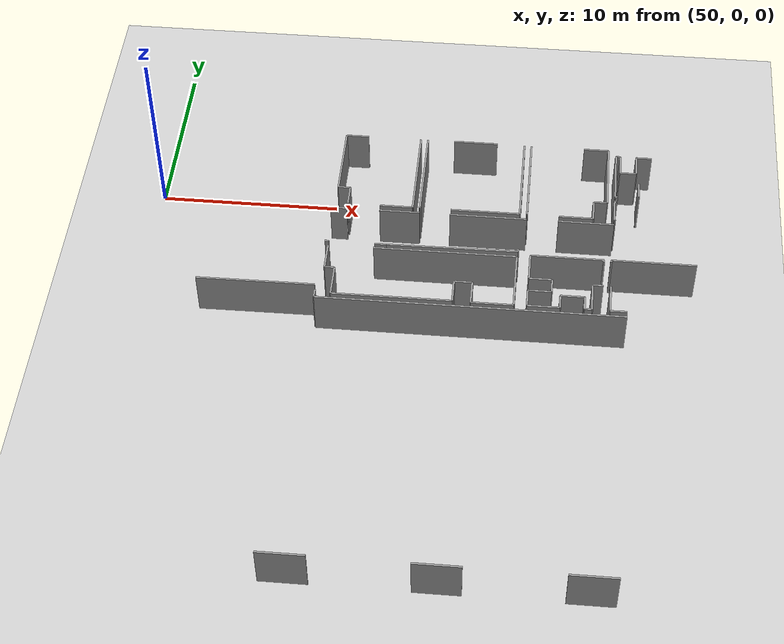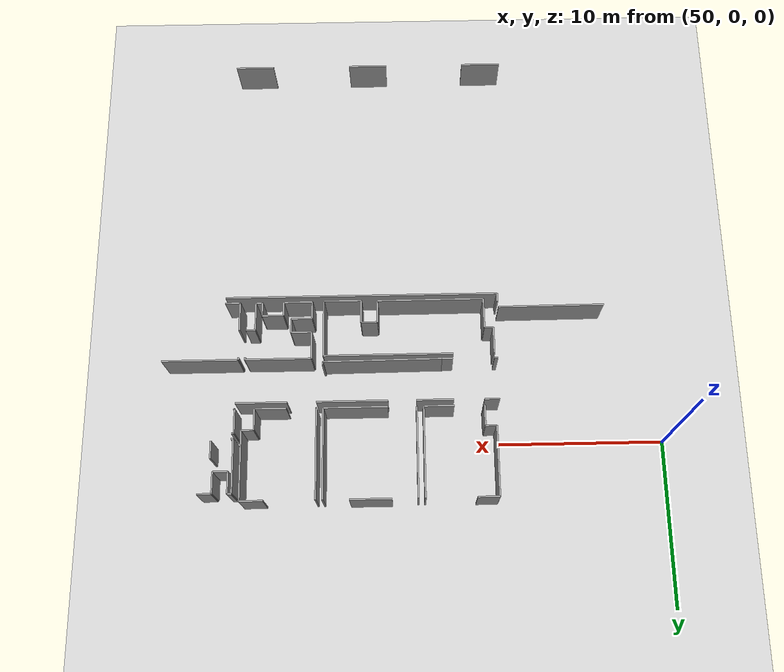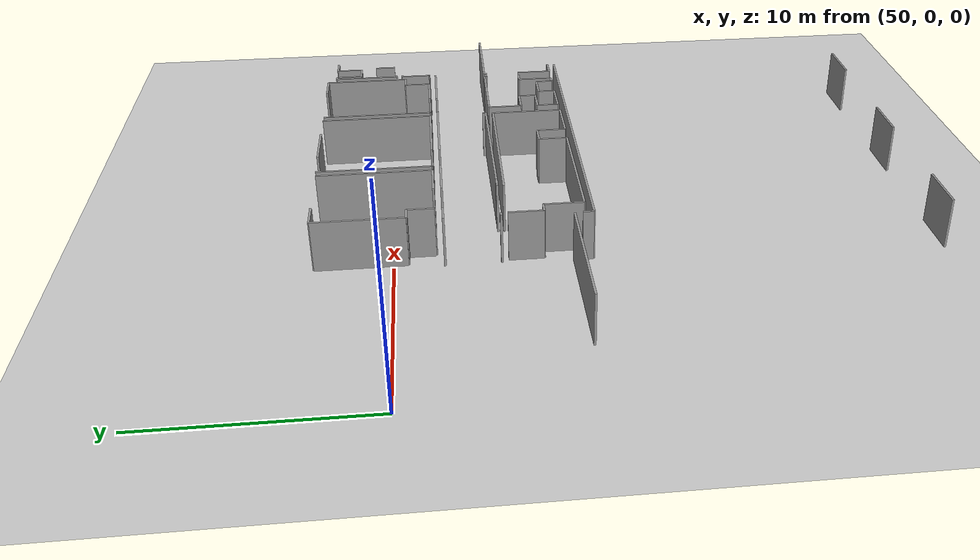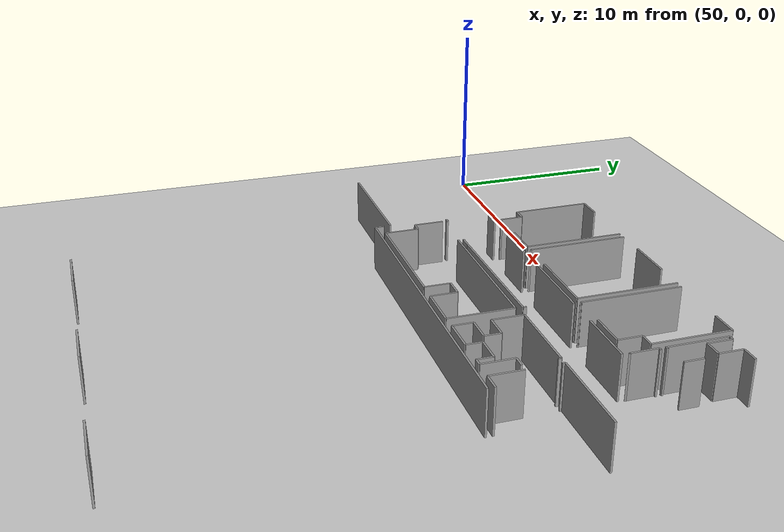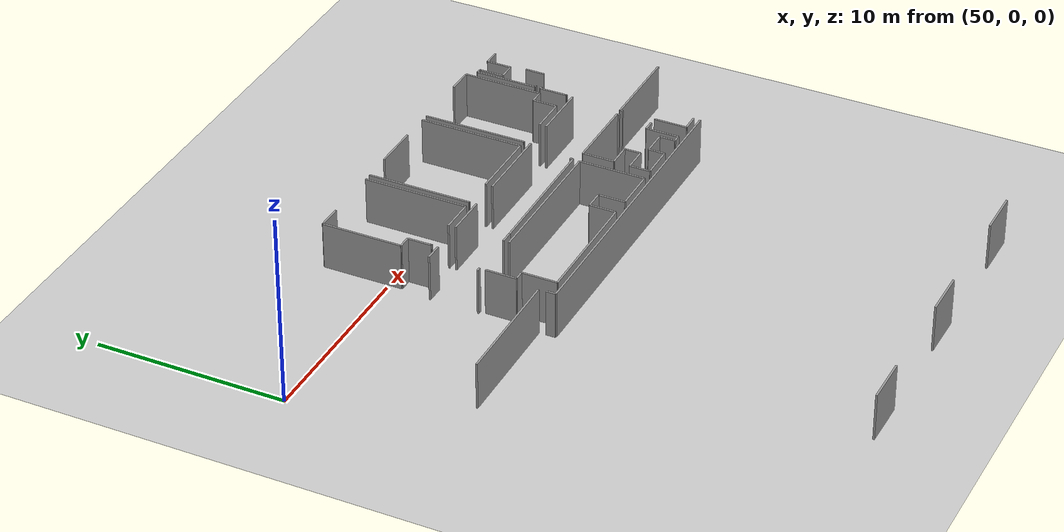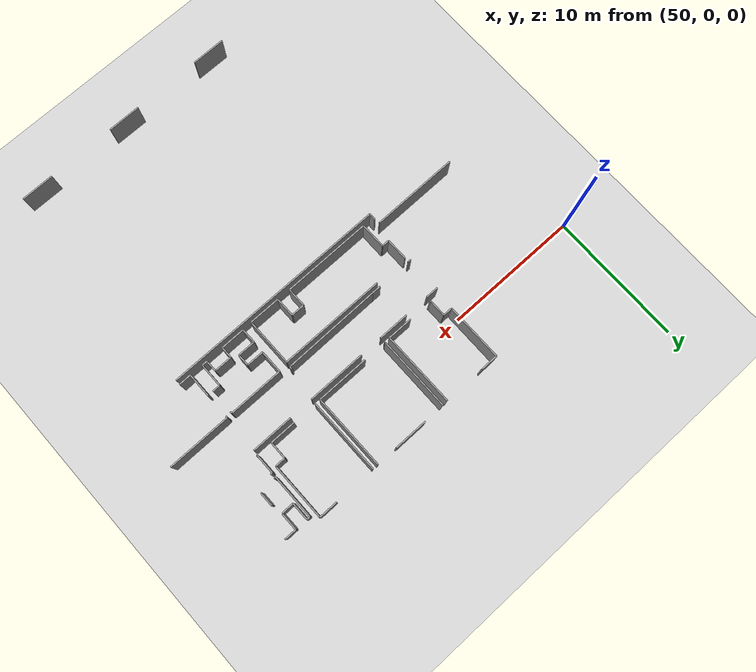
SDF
<sdf version="1.6">
 <world name="default">
  <model name="ground_plane">
   <static>1</static>
   <link name="link">
    <collision name="collision">
     <geometry><plane><normal>0 0 1</normal><size>100 100</size></plane></geometry>
     <surface><friction><ode><mu>100</mu><mu2>50</mu2></ode></friction></surface>
    </collision>
    <visual name="visual">
     <cast_shadows>0</cast_shadows>
     <geometry><plane><normal>0 0 1</normal><size>100 100</size></plane></geometry>
     <material>
      <script><uri>file://media/materials/scripts/gazebo.material</uri><name>Gazebo/Grey</name></script>
     </material>
    </visual>
   </link>
  </model>
  <model name="0510035342_A_40_1_101">
   <static>1</static>
   <link name="Wall_492">
    <collision name="Wall_492_Collision">
     <geometry><box><size>0.50518134715 0.1 2.5</size></box></geometry>
     <pose>0.252590673575 0 1.25 0 0 0</pose>
    </collision>
    <visual name="Wall_492_Visual">
     <pose>0.252590673575 0 1.25 0 0 0</pose>
     <geometry><box><size>0.50518134715 0.1 2.5</size></box></geometry>
     <material>
      <script><uri>file://media/materials/scripts/gazebo.material</uri><name>Gazebo/Grey</name></script>
      <ambient>1 1 1 1</ambient>
     </material>
    </visual>
    <pose>175.610586203 -33.7844153205 0 0 0 -1.57079632679</pose>
   </link>
   <link name="Wall_493">
    <collision name="Wall_493_Collision">
     <geometry><box><size>16.7380371838 0.1 2.5</size></box></geometry>
     <pose>8.36901859189 0 1.25 0 0 0</pose>
    </collision>
    <visual name="Wall_493_Visual">
     <pose>8.36901859189 0 1.25 0 0 0</pose>
     <geometry><box><size>16.7380371838 0.1 2.5</size></box></geometry>
     <material>
      <script><uri>file://media/materials/scripts/gazebo.material</uri><name>Gazebo/Grey</name></script>
      <ambient>1 1 1 1</ambient>
     </material>
    </visual>
    <pose>175.610586203 -34.2895966677 0 0 0 0.0</pose>
   </link>
   <link name="Wall_517">
    <collision name="Wall_517_Collision">
     <geometry><box><size>2.4484405161 0.1 2.5</size></box></geometry>
     <pose>1.22422025805 0 1.25 0 0 0</pose>
    </collision>
    <visual name="Wall_517_Visual">
     <pose>1.22422025805 0 1.25 0 0 0</pose>
     <geometry><box><size>2.4484405161 0.1 2.5</size></box></geometry>
     <material>
      <script><uri>file://media/materials/scripts/gazebo.material</uri><name>Gazebo/Grey</name></script>
      <ambient>1 1 1 1</ambient>
     </material>
    </visual>
    <pose>192.212994006 -50.5813776288 0 0 0 3.14159265359</pose>
   </link>
   <link name="Wall_518">
    <collision name="Wall_518_Collision">
     <geometry><box><size>2.4484405161 0.1 2.5</size></box></geometry>
     <pose>1.22422025805 0 1.25 0 0 0</pose>
    </collision>
    <visual name="Wall_518_Visual">
     <pose>1.22422025805 0 1.25 0 0 0</pose>
     <geometry><box><size>2.4484405161 0.1 2.5</size></box></geometry>
     <material>
      <script><uri>file://media/materials/scripts/gazebo.material</uri><name>Gazebo/Grey</name></script>
      <ambient>1 1 1 1</ambient>
     </material>
    </visual>
    <pose>184.757187849 -50.5813776288 0 0 0 3.14159265359</pose>
   </link>
   <link name="Wall_519">
    <collision name="Wall_519_Collision">
     <geometry><box><size>2.49263435944 0.1 2.5</size></box></geometry>
     <pose>1.24631717972 0 1.25 0 0 0</pose>
    </collision>
    <visual name="Wall_519_Visual">
     <pose>1.24631717972 0 1.25 0 0 0</pose>
     <geometry><box><size>2.49263435944 0.1 2.5</size></box></geometry>
     <material>
      <script><uri>file://media/materials/scripts/gazebo.material</uri><name>Gazebo/Grey</name></script>
      <ambient>1 1 1 1</ambient>
     </material>
    </visual>
    <pose>177.290460226 -50.5813776288 0 0 0 3.14159265359</pose>
   </link>
   <link name="Wall_528">
    <collision name="Wall_528_Collision">
     <geometry><box><size>6.47983789515 0.1 2.5</size></box></geometry>
     <pose>3.23991894757 0 1.25 0 0 0</pose>
    </collision>
    <visual name="Wall_528_Visual">
     <pose>3.23991894757 0 1.25 0 0 0</pose>
     <geometry><box><size>6.47983789515 0.1 2.5</size></box></geometry>
     <material>
      <script><uri>file://media/materials/scripts/gazebo.material</uri><name>Gazebo/Grey</name></script>
      <ambient>1 1 1 1</ambient>
     </material>
    </visual>
    <pose>175.556740831 -33.4069897389 0 0 0 -3.13586991895</pose>
   </link>
   <link name="Wall_529">
    <collision name="Wall_529_Collision">
     <geometry><box><size>0.667987402215 0.1 2.5</size></box></geometry>
     <pose>0.333993701107 0 1.25 0 0 0</pose>
    </collision>
    <visual name="Wall_529_Visual">
     <pose>0.333993701107 0 1.25 0 0 0</pose>
     <geometry><box><size>0.667987402215 0.1 2.5</size></box></geometry>
     <material>
      <script><uri>file://media/materials/scripts/gazebo.material</uri><name>Gazebo/Grey</name></script>
      <ambient>1 1 1 1</ambient>
     </material>
    </visual>
    <pose>179.120186935 -30.1490907244 0 0 0 3.14159265359</pose>
   </link>
   <link name="Wall_530">
    <collision name="Wall_530_Collision">
     <geometry><box><size>0.227318906837 0.1 2.5</size></box></geometry>
     <pose>0.113659453419 0 1.25 0 0 0</pose>
    </collision>
    <visual name="Wall_530_Visual">
     <pose>0.113659453419 0 1.25 0 0 0</pose>
     <geometry><box><size>0.227318906837 0.1 2.5</size></box></geometry>
     <material>
      <script><uri>file://media/materials/scripts/gazebo.material</uri><name>Gazebo/Grey</name></script>
      <ambient>1 1 1 1</ambient>
     </material>
    </visual>
    <pose>175.935436351 -30.1490907244 0 0 0 3.14159265359</pose>
   </link>
   <link name="Wall_531">
    <collision name="Wall_531_Collision">
     <geometry><box><size>0.92197500762 0.1 2.5</size></box></geometry>
     <pose>0.46098750381 0 1.25 0 0 0</pose>
    </collision>
    <visual name="Wall_531_Visual">
     <pose>0.46098750381 0 1.25 0 0 0</pose>
     <geometry><box><size>0.92197500762 0.1 2.5</size></box></geometry>
     <material>
      <script><uri>file://media/materials/scripts/gazebo.material</uri><name>Gazebo/Grey</name></script>
      <ambient>1 1 1 1</ambient>
     </material>
    </visual>
    <pose>175.708117444 -27.5787361577 0 0 0 0.0</pose>
   </link>
   <link name="Wall_532">
    <collision name="Wall_532_Collision">
     <geometry><box><size>2.2508381591 0.1 2.5</size></box></geometry>
     <pose>1.12541907955 0 1.25 0 0 0</pose>
    </collision>
    <visual name="Wall_532_Visual">
     <pose>1.12541907955 0 1.25 0 0 0</pose>
     <geometry><box><size>2.2508381591 0.1 2.5</size></box></geometry>
     <material>
      <script><uri>file://media/materials/scripts/gazebo.material</uri><name>Gazebo/Grey</name></script>
      <ambient>1 1 1 1</ambient>
     </material>
    </visual>
    <pose>178.466676826 -27.5787361577 0 0 0 0.0</pose>
   </link>
   <link name="Wall_533">
    <collision name="Wall_533_Collision">
     <geometry><box><size>4.29340648176 0.1 2.5</size></box></geometry>
     <pose>2.14670324088 0 1.25 0 0 0</pose>
    </collision>
    <visual name="Wall_533_Visual">
     <pose>2.14670324088 0 1.25 0 0 0</pose>
     <geometry><box><size>4.29340648176 0.1 2.5</size></box></geometry>
     <material>
      <script><uri>file://media/materials/scripts/gazebo.material</uri><name>Gazebo/Grey</name></script>
      <ambient>1 1 1 1</ambient>
     </material>
    </visual>
    <pose>182.400944834 -27.5787361577 0 0 0 0.0</pose>
   </link>
   <link name="Wall_534">
    <collision name="Wall_534_Collision">
     <geometry><box><size>3.09382302144 0.1 2.5</size></box></geometry>
     <pose>1.54691151072 0 1.25 0 0 0</pose>
    </collision>
    <visual name="Wall_534_Visual">
     <pose>1.54691151072 0 1.25 0 0 0</pose>
     <geometry><box><size>3.09382302144 0.1 2.5</size></box></geometry>
     <material>
      <script><uri>file://media/materials/scripts/gazebo.material</uri><name>Gazebo/Grey</name></script>
      <ambient>1 1 1 1</ambient>
     </material>
    </visual>
    <pose>188.443309966 -27.5787361577 0 0 0 0.0</pose>
   </link>
   <link name="Wall_553">
    <collision name="Wall_553_Collision">
     <geometry><box><size>0.17906126181 0.1 2.5</size></box></geometry>
     <pose>0.0895306309052 0 1.25 0 0 0</pose>
    </collision>
    <visual name="Wall_553_Visual">
     <pose>0.0895306309052 0 1.25 0 0 0</pose>
     <geometry><box><size>0.17906126181 0.1 2.5</size></box></geometry>
     <material>
      <script><uri>file://media/materials/scripts/gazebo.material</uri><name>Gazebo/Grey</name></script>
      <ambient>1 1 1 1</ambient>
     </material>
    </visual>
    <pose>186.33749873 -29.8973890074 0 0 0 -1.57079632679</pose>
   </link>
   <link name="Wall_554">
    <collision name="Wall_554_Collision">
     <geometry><box><size>7.21767734002 0.1 2.5</size></box></geometry>
     <pose>3.60883867001 0 1.25 0 0 0</pose>
    </collision>
    <visual name="Wall_554_Visual">
     <pose>3.60883867001 0 1.25 0 0 0</pose>
     <geometry><box><size>7.21767734002 0.1 2.5</size></box></geometry>
     <material>
      <script><uri>file://media/materials/scripts/gazebo.material</uri><name>Gazebo/Grey</name></script>
      <ambient>1 1 1 1</ambient>
     </material>
    </visual>
    <pose>186.33749873 -30.0764502692 0 0 0 -3.13152824117</pose>
   </link>
   <link name="Wall_555">
    <collision name="Wall_555_Collision">
     <geometry><box><size>1.26257238647 0.1 2.5</size></box></geometry>
     <pose>0.631286193234 0 1.25 0 0 0</pose>
    </collision>
    <visual name="Wall_555_Visual">
     <pose>0.631286193234 0 1.25 0 0 0</pose>
     <geometry><box><size>1.26257238647 0.1 2.5</size></box></geometry>
     <material>
      <script><uri>file://media/materials/scripts/gazebo.material</uri><name>Gazebo/Grey</name></script>
      <ambient>1 1 1 1</ambient>
     </material>
    </visual>
    <pose>176.642537844 -27.2124860307 0 0 0 1.57079632679</pose>
   </link>
   <link name="Wall_556">
    <collision name="Wall_556_Collision">
     <geometry><box><size>0.681702732907 0.1 2.5</size></box></geometry>
     <pose>0.340851366453 0 1.25 0 0 0</pose>
    </collision>
    <visual name="Wall_556_Visual">
     <pose>0.340851366453 0 1.25 0 0 0</pose>
     <geometry><box><size>0.681702732907 0.1 2.5</size></box></geometry>
     <material>
      <script><uri>file://media/materials/scripts/gazebo.material</uri><name>Gazebo/Grey</name></script>
      <ambient>1 1 1 1</ambient>
     </material>
    </visual>
    <pose>176.642537844 -25.9499136442 0 0 0 3.14159265359</pose>
   </link>
   <link name="Wall_557">
    <collision name="Wall_557_Collision">
     <geometry><box><size>4.23321141928 0.1 2.5</size></box></geometry>
     <pose>2.11660570964 0 1.25 0 0 0</pose>
    </collision>
    <visual name="Wall_557_Visual">
     <pose>2.11660570964 0 1.25 0 0 0</pose>
     <geometry><box><size>4.23321141928 0.1 2.5</size></box></geometry>
     <material>
      <script><uri>file://media/materials/scripts/gazebo.material</uri><name>Gazebo/Grey</name></script>
      <ambient>1 1 1 1</ambient>
     </material>
    </visual>
    <pose>175.960835111 -25.9499136442 0 0 0 1.57079632679</pose>
   </link>
   <link name="Wall_558">
    <collision name="Wall_558_Collision">
     <geometry><box><size>1.29203494869 0.1 2.5</size></box></geometry>
     <pose>0.646017474347 0 1.25 0 0 0</pose>
    </collision>
    <visual name="Wall_558_Visual">
     <pose>0.646017474347 0 1.25 0 0 0</pose>
     <geometry><box><size>1.29203494869 0.1 2.5</size></box></geometry>
     <material>
      <script><uri>file://media/materials/scripts/gazebo.material</uri><name>Gazebo/Grey</name></script>
      <ambient>1 1 1 1</ambient>
     </material>
    </visual>
    <pose>175.960835111 -21.7167022249 0 0 0 0.0</pose>
   </link>
   <link name="Wall_559">
    <collision name="Wall_559_Collision">
     <geometry><box><size>5.48359240069 0.1 2.5</size></box></geometry>
     <pose>2.74179620035 0 1.25 0 0 0</pose>
    </collision>
    <visual name="Wall_559_Visual">
     <pose>2.74179620035 0 1.25 0 0 0</pose>
     <geometry><box><size>5.48359240069 0.1 2.5</size></box></geometry>
     <material>
      <script><uri>file://media/materials/scripts/gazebo.material</uri><name>Gazebo/Grey</name></script>
      <ambient>1 1 1 1</ambient>
     </material>
    </visual>
    <pose>180.289037895 -21.7167022249 0 0 0 -1.57079632679</pose>
   </link>
   <link name="Wall_560">
    <collision name="Wall_560_Collision">
     <geometry><box><size>1.83328253581 0.1 2.5</size></box></geometry>
     <pose>0.916641267906 0 1.25 0 0 0</pose>
    </collision>
    <visual name="Wall_560_Visual">
     <pose>0.916641267906 0 1.25 0 0 0</pose>
     <geometry><box><size>1.83328253581 0.1 2.5</size></box></geometry>
     <material>
      <script><uri>file://media/materials/scripts/gazebo.material</uri><name>Gazebo/Grey</name></script>
      <ambient>1 1 1 1</ambient>
     </material>
    </visual>
    <pose>180.289037895 -27.2002946256 0 0 0 3.14159265359</pose>
   </link>
   <link name="Wall_561">
    <collision name="Wall_561_Collision">
     <geometry><box><size>0.0671527090101 0.1 2.5</size></box></geometry>
     <pose>0.033576354505 0 1.25 0 0 0</pose>
    </collision>
    <visual name="Wall_561_Visual">
     <pose>0.033576354505 0 1.25 0 0 0</pose>
     <geometry><box><size>0.0671527090101 0.1 2.5</size></box></geometry>
     <material>
      <script><uri>file://media/materials/scripts/gazebo.material</uri><name>Gazebo/Grey</name></script>
      <ambient>1 1 1 1</ambient>
     </material>
    </visual>
    <pose>176.708574622 -27.2002946256 0 0 0 -2.95903280046</pose>
   </link>
   <link name="Wall_562">
    <collision name="Wall_562_Collision">
     <geometry><box><size>1.87163466423 0.1 2.5</size></box></geometry>
     <pose>0.935817332114 0 1.25 0 0 0</pose>
    </collision>
    <visual name="Wall_562_Visual">
     <pose>0.935817332114 0 1.25 0 0 0</pose>
     <geometry><box><size>1.87163466423 0.1 2.5</size></box></geometry>
     <material>
      <script><uri>file://media/materials/scripts/gazebo.material</uri><name>Gazebo/Grey</name></script>
      <ambient>1 1 1 1</ambient>
     </material>
    </visual>
    <pose>176.469826272 -33.9606827187 0 0 0 1.57079632679</pose>
   </link>
   <link name="Wall_563">
    <collision name="Wall_563_Collision">
     <geometry><box><size>0.544295438383 0.1 2.5</size></box></geometry>
     <pose>0.272147719191 0 1.25 0 0 0</pose>
    </collision>
    <visual name="Wall_563_Visual">
     <pose>0.272147719191 0 1.25 0 0 0</pose>
     <geometry><box><size>0.544295438383 0.1 2.5</size></box></geometry>
     <material>
      <script><uri>file://media/materials/scripts/gazebo.material</uri><name>Gazebo/Grey</name></script>
      <ambient>1 1 1 1</ambient>
     </material>
    </visual>
    <pose>176.469826272 -32.0890480545 0 0 0 3.14159265359</pose>
   </link>
   <link name="Wall_564">
    <collision name="Wall_564_Collision">
     <geometry><box><size>1.63796606726 0.1 2.5</size></box></geometry>
     <pose>0.818983033628 0 1.25 0 0 0</pose>
    </collision>
    <visual name="Wall_564_Visual">
     <pose>0.818983033628 0 1.25 0 0 0</pose>
     <geometry><box><size>1.63796606726 0.1 2.5</size></box></geometry>
     <material>
      <script><uri>file://media/materials/scripts/gazebo.material</uri><name>Gazebo/Grey</name></script>
      <ambient>1 1 1 1</ambient>
     </material>
    </visual>
    <pose>175.925530834 -32.0890480545 0 0 0 1.57079632679</pose>
   </link>
   <link name="Wall_565">
    <collision name="Wall_565_Collision">
     <geometry><box><size>7.87082190389 0.1 2.5</size></box></geometry>
     <pose>3.93541095195 0 1.25 0 0 0</pose>
    </collision>
    <visual name="Wall_565_Visual">
     <pose>3.93541095195 0 1.25 0 0 0</pose>
     <geometry><box><size>7.87082190389 0.1 2.5</size></box></geometry>
     <material>
      <script><uri>file://media/materials/scripts/gazebo.material</uri><name>Gazebo/Grey</name></script>
      <ambient>1 1 1 1</ambient>
     </material>
    </visual>
    <pose>178.423244946 -30.4510819872 0 0 0 0.0</pose>
   </link>
   <link name="Wall_566">
    <collision name="Wall_566_Collision">
     <geometry><box><size>3.51722035965 0.1 2.5</size></box></geometry>
     <pose>1.75861017982 0 1.25 0 0 0</pose>
    </collision>
    <visual name="Wall_566_Visual">
     <pose>1.75861017982 0 1.25 0 0 0</pose>
     <geometry><box><size>3.51722035965 0.1 2.5</size></box></geometry>
     <material>
      <script><uri>file://media/materials/scripts/gazebo.material</uri><name>Gazebo/Grey</name></script>
      <ambient>1 1 1 1</ambient>
     </material>
    </visual>
    <pose>186.29406685 -30.4510819872 0 0 0 -1.57079632679</pose>
   </link>
   <link name="Wall_567">
    <collision name="Wall_567_Collision">
     <geometry><box><size>2.29452402723 0.1 2.5</size></box></geometry>
     <pose>1.14726201361 0 1.25 0 0 0</pose>
    </collision>
    <visual name="Wall_567_Visual">
     <pose>1.14726201361 0 1.25 0 0 0</pose>
     <geometry><box><size>2.29452402723 0.1 2.5</size></box></geometry>
     <material>
      <script><uri>file://media/materials/scripts/gazebo.material</uri><name>Gazebo/Grey</name></script>
      <ambient>1 1 1 1</ambient>
     </material>
    </visual>
    <pose>186.29406685 -33.9683023468 0 0 0 3.14159265359</pose>
   </link>
   <link name="Wall_568">
    <collision name="Wall_568_Collision">
     <geometry><box><size>1.42309255308 0.1 2.5</size></box></geometry>
     <pose>0.711546276542 0 1.25 0 0 0</pose>
    </collision>
    <visual name="Wall_568_Visual">
     <pose>0.711546276542 0 1.25 0 0 0</pose>
     <geometry><box><size>1.42309255308 0.1 2.5</size></box></geometry>
     <material>
      <script><uri>file://media/materials/scripts/gazebo.material</uri><name>Gazebo/Grey</name></script>
      <ambient>1 1 1 1</ambient>
     </material>
    </visual>
    <pose>183.999542822 -33.9683023468 0 0 0 1.57079632679</pose>
   </link>
   <link name="Wall_569">
    <collision name="Wall_569_Collision">
     <geometry><box><size>0.987503809814 0.1 2.5</size></box></geometry>
     <pose>0.493751904907 0 1.25 0 0 0</pose>
    </collision>
    <visual name="Wall_569_Visual">
     <pose>0.493751904907 0 1.25 0 0 0</pose>
     <geometry><box><size>0.987503809814 0.1 2.5</size></box></geometry>
     <material>
      <script><uri>file://media/materials/scripts/gazebo.material</uri><name>Gazebo/Grey</name></script>
      <ambient>1 1 1 1</ambient>
     </material>
    </visual>
    <pose>183.999542822 -32.5452097938 0 0 0 3.14159265359</pose>
   </link>
   <link name="Wall_570">
    <collision name="Wall_570_Collision">
     <geometry><box><size>1.39413796607 0.1 2.5</size></box></geometry>
     <pose>0.697068983034 0 1.25 0 0 0</pose>
    </collision>
    <visual name="Wall_570_Visual">
     <pose>0.697068983034 0 1.25 0 0 0</pose>
     <geometry><box><size>1.39413796607 0.1 2.5</size></box></geometry>
     <material>
      <script><uri>file://media/materials/scripts/gazebo.material</uri><name>Gazebo/Grey</name></script>
      <ambient>1 1 1 1</ambient>
     </material>
    </visual>
    <pose>183.012039012 -32.5452097938 0 0 0 -1.57079632679</pose>
   </link>
   <link name="Wall_571">
    <collision name="Wall_571_Collision">
     <geometry><box><size>6.54224752789 0.1 2.5</size></box></geometry>
     <pose>3.27112376394 0 1.25 0 0 0</pose>
    </collision>
    <visual name="Wall_571_Visual">
     <pose>3.27112376394 0 1.25 0 0 0</pose>
     <geometry><box><size>6.54224752789 0.1 2.5</size></box></geometry>
     <material>
      <script><uri>file://media/materials/scripts/gazebo.material</uri><name>Gazebo/Grey</name></script>
      <ambient>1 1 1 1</ambient>
     </material>
    </visual>
    <pose>183.012039012 -33.9393477598 0 0 0 -3.13833154239</pose>
   </link>
   <link name="Wall_572">
    <collision name="Wall_572_Collision">
     <geometry><box><size>5.48003657422 0.1 2.5</size></box></geometry>
     <pose>2.74001828711 0 1.25 0 0 0</pose>
    </collision>
    <visual name="Wall_572_Visual">
     <pose>2.74001828711 0 1.25 0 0 0</pose>
     <geometry><box><size>5.48003657422 0.1 2.5</size></box></geometry>
     <material>
      <script><uri>file://media/materials/scripts/gazebo.material</uri><name>Gazebo/Grey</name></script>
      <ambient>1 1 1 1</ambient>
     </material>
    </visual>
    <pose>180.695164076 -27.1804835924 0 0 0 1.57079632679</pose>
   </link>
   <link name="Wall_573">
    <collision name="Wall_573_Collision">
     <geometry><box><size>2.49212638423 0.1 2.5</size></box></geometry>
     <pose>1.24606319212 0 1.25 0 0 0</pose>
    </collision>
    <visual name="Wall_573_Visual">
     <pose>1.24606319212 0 1.25 0 0 0</pose>
     <geometry><box><size>2.49212638423 0.1 2.5</size></box></geometry>
     <material>
      <script><uri>file://media/materials/scripts/gazebo.material</uri><name>Gazebo/Grey</name></script>
      <ambient>1 1 1 1</ambient>
     </material>
    </visual>
    <pose>182.227471299 -21.7004470182 0 0 0 0.0</pose>
   </link>
   <link name="Wall_574">
    <collision name="Wall_574_Collision">
     <geometry><box><size>5.49959361983 0.1 2.5</size></box></geometry>
     <pose>2.74979680992 0 1.25 0 0 0</pose>
    </collision>
    <visual name="Wall_574_Visual">
     <pose>2.74979680992 0 1.25 0 0 0</pose>
     <geometry><box><size>5.49959361983 0.1 2.5</size></box></geometry>
     <material>
      <script><uri>file://media/materials/scripts/gazebo.material</uri><name>Gazebo/Grey</name></script>
      <ambient>1 1 1 1</ambient>
     </material>
    </visual>
    <pose>186.285431271 -21.7004470182 0 0 0 -1.57079632679</pose>
   </link>
   <link name="Wall_575">
    <collision name="Wall_575_Collision">
     <geometry><box><size>3.85756375089 0.1 2.5</size></box></geometry>
     <pose>1.92878187544 0 1.25 0 0 0</pose>
    </collision>
    <visual name="Wall_575_Visual">
     <pose>1.92878187544 0 1.25 0 0 0</pose>
     <geometry><box><size>3.85756375089 0.1 2.5</size></box></geometry>
     <material>
      <script><uri>file://media/materials/scripts/gazebo.material</uri><name>Gazebo/Grey</name></script>
      <ambient>1 1 1 1</ambient>
     </material>
    </visual>
    <pose>186.285431271 -27.200040638 0 0 0 3.14159265359</pose>
   </link>
   <link name="Wall_576">
    <collision name="Wall_576_Collision">
     <geometry><box><size>0.0469382563635 0.1 2.5</size></box></geometry>
     <pose>0.0234691281817 0 1.25 0 0 0</pose>
    </collision>
    <visual name="Wall_576_Visual">
     <pose>0.0234691281817 0 1.25 0 0 0</pose>
     <geometry><box><size>0.0469382563635 0.1 2.5</size></box></geometry>
     <material>
      <script><uri>file://media/materials/scripts/gazebo.material</uri><name>Gazebo/Grey</name></script>
      <ambient>1 1 1 1</ambient>
     </material>
    </visual>
    <pose>180.737833994 -27.200040638 0 0 0 2.71183037449</pose>
   </link>
   <link name="Wall_577">
    <collision name="Wall_577_Collision">
     <geometry><box><size>5.47876663619 0.1 2.5</size></box></geometry>
     <pose>2.73938331809 0 1.25 0 0 0</pose>
    </collision>
    <visual name="Wall_577_Visual">
     <pose>2.73938331809 0 1.25 0 0 0</pose>
     <geometry><box><size>5.47876663619 0.1 2.5</size></box></geometry>
     <material>
      <script><uri>file://media/materials/scripts/gazebo.material</uri><name>Gazebo/Grey</name></script>
      <ambient>1 1 1 1</ambient>
     </material>
    </visual>
    <pose>186.689779539 -27.1959768363 0 0 0 1.57079632679</pose>
   </link>
   <link name="Wall_578">
    <collision name="Wall_578_Collision">
     <geometry><box><size>1.40328151986 0.1 2.5</size></box></geometry>
     <pose>0.701640759931 0 1.25 0 0 0</pose>
    </collision>
    <visual name="Wall_578_Visual">
     <pose>0.701640759931 0 1.25 0 0 0</pose>
     <geometry><box><size>1.40328151986 0.1 2.5</size></box></geometry>
     <material>
      <script><uri>file://media/materials/scripts/gazebo.material</uri><name>Gazebo/Grey</name></script>
      <ambient>1 1 1 1</ambient>
     </material>
    </visual>
    <pose>189.728741237 -21.7172102001 0 0 0 0.0</pose>
   </link>
   <link name="Wall_579">
    <collision name="Wall_579_Collision">
     <geometry><box><size>4.20374885706 0.1 2.5</size></box></geometry>
     <pose>2.10187442853 0 1.25 0 0 0</pose>
    </collision>
    <visual name="Wall_579_Visual">
     <pose>2.10187442853 0 1.25 0 0 0</pose>
     <geometry><box><size>4.20374885706 0.1 2.5</size></box></geometry>
     <material>
      <script><uri>file://media/materials/scripts/gazebo.material</uri><name>Gazebo/Grey</name></script>
      <ambient>1 1 1 1</ambient>
     </material>
    </visual>
    <pose>191.132022757 -21.7172102001 0 0 0 -1.57079632679</pose>
   </link>
   <link name="Wall_580">
    <collision name="Wall_580_Collision">
     <geometry><box><size>0.750279386366 0.1 2.5</size></box></geometry>
     <pose>0.375139693183 0 1.25 0 0 0</pose>
    </collision>
    <visual name="Wall_580_Visual">
     <pose>0.375139693183 0 1.25 0 0 0</pose>
     <geometry><box><size>0.750279386366 0.1 2.5</size></box></geometry>
     <material>
      <script><uri>file://media/materials/scripts/gazebo.material</uri><name>Gazebo/Grey</name></script>
      <ambient>1 1 1 1</ambient>
     </material>
    </visual>
    <pose>191.132022757 -25.9209590572 0 0 0 3.14159265359</pose>
   </link>
   <link name="Wall_581">
    <collision name="Wall_581_Collision">
     <geometry><box><size>1.28898709743 0.1 2.5</size></box></geometry>
     <pose>0.644493548715 0 1.25 0 0 0</pose>
    </collision>
    <visual name="Wall_581_Visual">
     <pose>0.644493548715 0 1.25 0 0 0</pose>
     <geometry><box><size>1.28898709743 0.1 2.5</size></box></geometry>
     <material>
      <script><uri>file://media/materials/scripts/gazebo.material</uri><name>Gazebo/Grey</name></script>
      <ambient>1 1 1 1</ambient>
     </material>
    </visual>
    <pose>190.381743371 -25.9209590572 0 0 0 -1.57079632679</pose>
   </link>
   <link name="Wall_582">
    <collision name="Wall_582_Collision">
     <geometry><box><size>1.90973280504 0.1 2.5</size></box></geometry>
     <pose>0.95486640252 0 1.25 0 0 0</pose>
    </collision>
    <visual name="Wall_582_Visual">
     <pose>0.95486640252 0 1.25 0 0 0</pose>
     <geometry><box><size>1.90973280504 0.1 2.5</size></box></geometry>
     <material>
      <script><uri>file://media/materials/scripts/gazebo.material</uri><name>Gazebo/Grey</name></script>
      <ambient>1 1 1 1</ambient>
     </material>
    </visual>
    <pose>190.381743371 -27.2099461546 0 0 0 3.14159265359</pose>
   </link>
   <link name="Wall_583">
    <collision name="Wall_583_Collision">
     <geometry><box><size>0.0377314809004 0.1 2.5</size></box></geometry>
     <pose>0.0188657404502 0 1.25 0 0 0</pose>
    </collision>
    <visual name="Wall_583_Visual">
     <pose>0.0188657404502 0 1.25 0 0 0</pose>
     <geometry><box><size>0.0377314809004 0.1 2.5</size></box></geometry>
     <material>
      <script><uri>file://media/materials/scripts/gazebo.material</uri><name>Gazebo/Grey</name></script>
      <ambient>1 1 1 1</ambient>
     </material>
    </visual>
    <pose>186.724829828 -27.2099461546 0 0 0 2.76233627583</pose>
   </link>
   <link name="Wall_584">
    <collision name="Wall_584_Collision">
     <geometry><box><size>1.47033424769 0.1 2.5</size></box></geometry>
     <pose>0.735167123844 0 1.25 0 0 0</pose>
    </collision>
    <visual name="Wall_584_Visual">
     <pose>0.735167123844 0 1.25 0 0 0</pose>
     <geometry><box><size>1.47033424769 0.1 2.5</size></box></geometry>
     <material>
      <script><uri>file://media/materials/scripts/gazebo.material</uri><name>Gazebo/Grey</name></script>
      <ambient>1 1 1 1</ambient>
     </material>
    </visual>
    <pose>191.556182058 -27.2099461546 0 0 0 1.57079632679</pose>
   </link>
   <link name="Wall_585">
    <collision name="Wall_585_Collision">
     <geometry><box><size>0.143249009448 0.1 2.5</size></box></geometry>
     <pose>0.0716245047242 0 1.25 0 0 0</pose>
    </collision>
    <visual name="Wall_585_Visual">
     <pose>0.0716245047242 0 1.25 0 0 0</pose>
     <geometry><box><size>0.143249009448 0.1 2.5</size></box></geometry>
     <material>
      <script><uri>file://media/materials/scripts/gazebo.material</uri><name>Gazebo/Grey</name></script>
      <ambient>1 1 1 1</ambient>
     </material>
    </visual>
    <pose>191.556182058 -25.7396119069 0 0 0 0.0</pose>
   </link>
   <link name="Wall_589">
    <collision name="Wall_589_Collision">
     <geometry><box><size>0.0607386280315 0.1 2.5</size></box></geometry>
     <pose>0.0303693140158 0 1.25 0 0 0</pose>
    </collision>
    <visual name="Wall_589_Visual">
     <pose>0.0303693140158 0 1.25 0 0 0</pose>
     <geometry><box><size>0.0607386280315 0.1 2.5</size></box></geometry>
     <material>
      <script><uri>file://media/materials/scripts/gazebo.material</uri><name>Gazebo/Grey</name></script>
      <ambient>1 1 1 1</ambient>
     </material>
    </visual>
    <pose>191.60901148 -27.2399166921 0 0 0 2.62555856249</pose>
   </link>
   <link name="Wall_590">
    <collision name="Wall_590_Collision">
     <geometry><box><size>3.27009041959 0.1 2.5</size></box></geometry>
     <pose>1.63504520979 0 1.25 0 0 0</pose>
    </collision>
    <visual name="Wall_590_Visual">
     <pose>1.63504520979 0 1.25 0 0 0</pose>
     <geometry><box><size>3.27009041959 0.1 2.5</size></box></geometry>
     <material>
      <script><uri>file://media/materials/scripts/gazebo.material</uri><name>Gazebo/Grey</name></script>
      <ambient>1 1 1 1</ambient>
     </material>
    </visual>
    <pose>191.576247079 -25.4294930407 0 0 0 1.57079632679</pose>
   </link>
   <link name="Wall_591">
    <collision name="Wall_591_Collision">
     <geometry><box><size>0.245606014426 0.1 2.5</size></box></geometry>
     <pose>0.122803007213 0 1.25 0 0 0</pose>
    </collision>
    <visual name="Wall_591_Visual">
     <pose>0.122803007213 0 1.25 0 0 0</pose>
     <geometry><box><size>0.245606014426 0.1 2.5</size></box></geometry>
     <material>
      <script><uri>file://media/materials/scripts/gazebo.material</uri><name>Gazebo/Grey</name></script>
      <ambient>1 1 1 1</ambient>
     </material>
    </visual>
    <pose>191.576247079 -22.1594026212 0 0 0 0.0</pose>
   </link>
   <link name="Wall_592">
    <collision name="Wall_592_Collision">
     <geometry><box><size>1.31006806868 0.1 2.5</size></box></geometry>
     <pose>0.655034034339 0 1.25 0 0 0</pose>
    </collision>
    <visual name="Wall_592_Visual">
     <pose>0.655034034339 0 1.25 0 0 0</pose>
     <geometry><box><size>1.31006806868 0.1 2.5</size></box></geometry>
     <material>
      <script><uri>file://media/materials/scripts/gazebo.material</uri><name>Gazebo/Grey</name></script>
      <ambient>1 1 1 1</ambient>
     </material>
    </visual>
    <pose>191.821853094 -22.1594026212 0 0 0 -1.57079632679</pose>
   </link>
   <link name="Wall_593">
    <collision name="Wall_593_Collision">
     <geometry><box><size>0.911561515798 0.1 2.5</size></box></geometry>
     <pose>0.455780757899 0 1.25 0 0 0</pose>
    </collision>
    <visual name="Wall_593_Visual">
     <pose>0.455780757899 0 1.25 0 0 0</pose>
     <geometry><box><size>0.911561515798 0.1 2.5</size></box></geometry>
     <material>
      <script><uri>file://media/materials/scripts/gazebo.material</uri><name>Gazebo/Grey</name></script>
      <ambient>1 1 1 1</ambient>
     </material>
    </visual>
    <pose>191.821853094 -23.4694706898 0 0 0 0.0</pose>
   </link>
   <link name="Wall_594">
    <collision name="Wall_594_Collision">
     <geometry><box><size>1.30473432896 0.1 2.5</size></box></geometry>
     <pose>0.652367164482 0 1.25 0 0 0</pose>
    </collision>
    <visual name="Wall_594_Visual">
     <pose>0.652367164482 0 1.25 0 0 0</pose>
     <geometry><box><size>1.30473432896 0.1 2.5</size></box></geometry>
     <material>
      <script><uri>file://media/materials/scripts/gazebo.material</uri><name>Gazebo/Grey</name></script>
      <ambient>1 1 1 1</ambient>
     </material>
    </visual>
    <pose>192.733414609 -23.4694706898 0 0 0 1.57079632679</pose>
   </link>
   <link name="Wall_595">
    <collision name="Wall_595_Collision">
     <geometry><box><size>0.879051102306 0.1 2.5</size></box></geometry>
     <pose>0.439525551153 0 1.25 0 0 0</pose>
    </collision>
    <visual name="Wall_595_Visual">
     <pose>0.439525551153 0 1.25 0 0 0</pose>
     <geometry><box><size>0.879051102306 0.1 2.5</size></box></geometry>
     <material>
      <script><uri>file://media/materials/scripts/gazebo.material</uri><name>Gazebo/Grey</name></script>
      <ambient>1 1 1 1</ambient>
     </material>
    </visual>
    <pose>192.733414609 -22.1647363609 0 0 0 0.0</pose>
   </link>
   <link name="Wall_598">
    <collision name="Wall_598_Collision">
     <geometry><box><size>1.04820684751 0.1 2.5</size></box></geometry>
     <pose>0.524103423753 0 1.25 0 0 0</pose>
    </collision>
    <visual name="Wall_598_Visual">
     <pose>0.524103423753 0 1.25 0 0 0</pose>
     <geometry><box><size>1.04820684751 0.1 2.5</size></box></geometry>
     <material>
      <script><uri>file://media/materials/scripts/gazebo.material</uri><name>Gazebo/Grey</name></script>
      <ambient>1 1 1 1</ambient>
     </material>
    </visual>
    <pose>192.897236615 -24.2611500559 0 0 0 -1.57079632679</pose>
   </link>
   <link name="Wall_602">
    <collision name="Wall_602_Collision">
     <geometry><box><size>0.138630939537 0.1 2.5</size></box></geometry>
     <pose>0.0693154697686 0 1.25 0 0 0</pose>
    </collision>
    <visual name="Wall_602_Visual">
     <pose>0.0693154697686 0 1.25 0 0 0</pose>
     <geometry><box><size>0.138630939537 0.1 2.5</size></box></geometry>
     <material>
      <script><uri>file://media/materials/scripts/gazebo.material</uri><name>Gazebo/Grey</name></script>
      <ambient>1 1 1 1</ambient>
     </material>
    </visual>
    <pose>191.713146398 -25.4076501067 0 0 0 -2.98337157619</pose>
   </link>
   <link name="Wall_651">
    <collision name="Wall_651_Collision">
     <geometry><box><size>1.76648379559 0.1 2.5</size></box></geometry>
     <pose>0.883241897795 0 1.25 0 0 0</pose>
    </collision>
    <visual name="Wall_651_Visual">
     <pose>0.883241897795 0 1.25 0 0 0</pose>
     <geometry><box><size>1.76648379559 0.1 2.5</size></box></geometry>
     <material>
      <script><uri>file://media/materials/scripts/gazebo.material</uri><name>Gazebo/Grey</name></script>
      <ambient>1 1 1 1</ambient>
     </material>
    </visual>
    <pose>191.441633648 -33.9416336483 0 0 0 1.57079632679</pose>
   </link>
   <link name="Wall_652">
    <collision name="Wall_652_Collision">
     <geometry><box><size>0.14426495987 0.1 2.5</size></box></geometry>
     <pose>0.072132479935 0 1.25 0 0 0</pose>
    </collision>
    <visual name="Wall_652_Visual">
     <pose>0.072132479935 0 1.25 0 0 0</pose>
     <geometry><box><size>0.14426495987 0.1 2.5</size></box></geometry>
     <material>
      <script><uri>file://media/materials/scripts/gazebo.material</uri><name>Gazebo/Grey</name></script>
      <ambient>1 1 1 1</ambient>
     </material>
    </visual>
    <pose>191.441633648 -30.4272071523 0 0 0 1.57079632679</pose>
   </link>
   <link name="Wall_653">
    <collision name="Wall_653_Collision">
     <geometry><box><size>4.64009956314 0.1 2.5</size></box></geometry>
     <pose>2.32004978157 0 1.25 0 0 0</pose>
    </collision>
    <visual name="Wall_653_Visual">
     <pose>2.32004978157 0 1.25 0 0 0</pose>
     <geometry><box><size>4.64009956314 0.1 2.5</size></box></geometry>
     <material>
      <script><uri>file://media/materials/scripts/gazebo.material</uri><name>Gazebo/Grey</name></script>
      <ambient>1 1 1 1</ambient>
     </material>
    </visual>
    <pose>191.441633648 -30.2829421924 0 0 0 0.0</pose>
   </link>
   <link name="Wall_656">
    <collision name="Wall_656_Collision">
     <geometry><box><size>0.910152738578 0.1 2.5</size></box></geometry>
     <pose>0.455076369289 0 1.25 0 0 0</pose>
    </collision>
    <visual name="Wall_656_Visual">
     <pose>0.455076369289 0 1.25 0 0 0</pose>
     <geometry><box><size>0.910152738578 0.1 2.5</size></box></geometry>
     <material>
      <script><uri>file://media/materials/scripts/gazebo.material</uri><name>Gazebo/Grey</name></script>
      <ambient>1 1 1 1</ambient>
     </material>
    </visual>
    <pose>192.351671238 -33.9271563548 0 0 0 -3.12568553882</pose>
   </link>
   <link name="Wall_657">
    <collision name="Wall_657_Collision">
     <geometry><box><size>1.08782891395 0.1 2.5</size></box></geometry>
     <pose>0.543914456974 0 1.25 0 0 0</pose>
    </collision>
    <visual name="Wall_657_Visual">
     <pose>0.543914456974 0 1.25 0 0 0</pose>
     <geometry><box><size>1.08782891395 0.1 2.5</size></box></geometry>
     <material>
      <script><uri>file://media/materials/scripts/gazebo.material</uri><name>Gazebo/Grey</name></script>
      <ambient>1 1 1 1</ambient>
     </material>
    </visual>
    <pose>187.005486132 -33.9390937722 0 0 0 1.57079632679</pose>
   </link>
   <link name="Wall_658">
    <collision name="Wall_658_Collision">
     <geometry><box><size>1.27857360561 0.1 2.5</size></box></geometry>
     <pose>0.639286802804 0 1.25 0 0 0</pose>
    </collision>
    <visual name="Wall_658_Visual">
     <pose>0.639286802804 0 1.25 0 0 0</pose>
     <geometry><box><size>1.27857360561 0.1 2.5</size></box></geometry>
     <material>
      <script><uri>file://media/materials/scripts/gazebo.material</uri><name>Gazebo/Grey</name></script>
      <ambient>1 1 1 1</ambient>
     </material>
    </visual>
    <pose>187.005486132 -32.8512648583 0 0 0 0.0</pose>
   </link>
   <link name="Wall_659">
    <collision name="Wall_659_Collision">
     <geometry><box><size>0.871685461749 0.1 2.5</size></box></geometry>
     <pose>0.435842730875 0 1.25 0 0 0</pose>
    </collision>
    <visual name="Wall_659_Visual">
     <pose>0.435842730875 0 1.25 0 0 0</pose>
     <geometry><box><size>0.871685461749 0.1 2.5</size></box></geometry>
     <material>
      <script><uri>file://media/materials/scripts/gazebo.material</uri><name>Gazebo/Grey</name></script>
      <ambient>1 1 1 1</ambient>
     </material>
    </visual>
    <pose>188.284059738 -32.8512648583 0 0 0 1.57079632679</pose>
   </link>
   <link name="Wall_660">
    <collision name="Wall_660_Collision">
     <geometry><box><size>1.26206441126 0.1 2.5</size></box></geometry>
     <pose>0.631032205628 0 1.25 0 0 0</pose>
    </collision>
    <visual name="Wall_660_Visual">
     <pose>0.631032205628 0 1.25 0 0 0</pose>
     <geometry><box><size>1.26206441126 0.1 2.5</size></box></geometry>
     <material>
      <script><uri>file://media/materials/scripts/gazebo.material</uri><name>Gazebo/Grey</name></script>
      <ambient>1 1 1 1</ambient>
     </material>
    </visual>
    <pose>188.284059738 -31.9795793965 0 0 0 3.14159265359</pose>
   </link>
   <link name="Wall_661">
    <collision name="Wall_661_Collision">
     <geometry><box><size>1.68546174947 0.1 2.5</size></box></geometry>
     <pose>0.842730874733 0 1.25 0 0 0</pose>
    </collision>
    <visual name="Wall_661_Visual">
     <pose>0.842730874733 0 1.25 0 0 0</pose>
     <geometry><box><size>1.68546174947 0.1 2.5</size></box></geometry>
     <material>
      <script><uri>file://media/materials/scripts/gazebo.material</uri><name>Gazebo/Grey</name></script>
      <ambient>1 1 1 1</ambient>
     </material>
    </visual>
    <pose>187.021995327 -31.9795793965 0 0 0 1.57079632679</pose>
   </link>
   <link name="Wall_662">
    <collision name="Wall_662_Collision">
     <geometry><box><size>4.01859189272 0.1 2.5</size></box></geometry>
     <pose>2.00929594636 0 1.25 0 0 0</pose>
    </collision>
    <visual name="Wall_662_Visual">
     <pose>2.00929594636 0 1.25 0 0 0</pose>
     <geometry><box><size>4.01859189272 0.1 2.5</size></box></geometry>
     <material>
      <script><uri>file://media/materials/scripts/gazebo.material</uri><name>Gazebo/Grey</name></script>
      <ambient>1 1 1 1</ambient>
     </material>
    </visual>
    <pose>187.021995327 -30.2941176471 0 0 0 0.0</pose>
   </link>
   <link name="Wall_663">
    <collision name="Wall_663_Collision">
     <geometry><box><size>0.140963121 0.1 2.5</size></box></geometry>
     <pose>0.0704815604999 0 1.25 0 0 0</pose>
    </collision>
    <visual name="Wall_663_Visual">
     <pose>0.0704815604999 0 1.25 0 0 0</pose>
     <geometry><box><size>0.140963121 0.1 2.5</size></box></geometry>
     <material>
      <script><uri>file://media/materials/scripts/gazebo.material</uri><name>Gazebo/Grey</name></script>
      <ambient>1 1 1 1</ambient>
     </material>
    </visual>
    <pose>191.040587219 -30.2941176471 0 0 0 -1.57079632679</pose>
   </link>
   <link name="Wall_664">
    <collision name="Wall_664_Collision">
     <geometry><box><size>0.572996037793 0.1 2.5</size></box></geometry>
     <pose>0.286498018897 0 1.25 0 0 0</pose>
    </collision>
    <visual name="Wall_664_Visual">
     <pose>0.286498018897 0 1.25 0 0 0</pose>
     <geometry><box><size>0.572996037793 0.1 2.5</size></box></geometry>
     <material>
      <script><uri>file://media/materials/scripts/gazebo.material</uri><name>Gazebo/Grey</name></script>
      <ambient>1 1 1 1</ambient>
     </material>
    </visual>
    <pose>191.040587219 -32.1751498527 0 0 0 3.14159265359</pose>
   </link>
   <link name="Wall_665">
    <collision name="Wall_665_Collision">
     <geometry><box><size>1.74108503505 0.1 2.5</size></box></geometry>
     <pose>0.870542517525 0 1.25 0 0 0</pose>
    </collision>
    <visual name="Wall_665_Visual">
     <pose>0.870542517525 0 1.25 0 0 0</pose>
     <geometry><box><size>1.74108503505 0.1 2.5</size></box></geometry>
     <material>
      <script><uri>file://media/materials/scripts/gazebo.material</uri><name>Gazebo/Grey</name></script>
      <ambient>1 1 1 1</ambient>
     </material>
    </visual>
    <pose>190.467591182 -32.1751498527 0 0 0 -1.57079632679</pose>
   </link>
   <link name="Wall_666">
    <collision name="Wall_666_Collision">
     <geometry><box><size>0.395712689221 0.1 2.5</size></box></geometry>
     <pose>0.19785634461 0 1.25 0 0 0</pose>
    </collision>
    <visual name="Wall_666_Visual">
     <pose>0.19785634461 0 1.25 0 0 0</pose>
     <geometry><box><size>0.395712689221 0.1 2.5</size></box></geometry>
     <material>
      <script><uri>file://media/materials/scripts/gazebo.material</uri><name>Gazebo/Grey</name></script>
      <ambient>1 1 1 1</ambient>
     </material>
    </visual>
    <pose>190.467591182 -33.9162348877 0 0 0 3.14159265359</pose>
   </link>
   <link name="Wall_667">
    <collision name="Wall_667_Collision">
     <geometry><box><size>0.83460327136 0.1 2.5</size></box></geometry>
     <pose>0.41730163568 0 1.25 0 0 0</pose>
    </collision>
    <visual name="Wall_667_Visual">
     <pose>0.41730163568 0 1.25 0 0 0</pose>
     <geometry><box><size>0.83460327136 0.1 2.5</size></box></geometry>
     <material>
      <script><uri>file://media/materials/scripts/gazebo.material</uri><name>Gazebo/Grey</name></script>
      <ambient>1 1 1 1</ambient>
     </material>
    </visual>
    <pose>190.071878492 -33.9162348877 0 0 0 1.57079632679</pose>
   </link>
   <link name="Wall_668">
    <collision name="Wall_668_Collision">
     <geometry><box><size>1.30676622981 0.1 2.5</size></box></geometry>
     <pose>0.653383114904 0 1.25 0 0 0</pose>
    </collision>
    <visual name="Wall_668_Visual">
     <pose>0.653383114904 0 1.25 0 0 0</pose>
     <geometry><box><size>1.30676622981 0.1 2.5</size></box></geometry>
     <material>
      <script><uri>file://media/materials/scripts/gazebo.material</uri><name>Gazebo/Grey</name></script>
      <ambient>1 1 1 1</ambient>
     </material>
    </visual>
    <pose>190.071878492 -33.0816316164 0 0 0 3.14159265359</pose>
   </link>
   <link name="Wall_669">
    <collision name="Wall_669_Collision">
     <geometry><box><size>0.845524738393 0.1 2.5</size></box></geometry>
     <pose>0.422762369196 0 1.25 0 0 0</pose>
    </collision>
    <visual name="Wall_669_Visual">
     <pose>0.422762369196 0 1.25 0 0 0</pose>
     <geometry><box><size>0.845524738393 0.1 2.5</size></box></geometry>
     <material>
      <script><uri>file://media/materials/scripts/gazebo.material</uri><name>Gazebo/Grey</name></script>
      <ambient>1 1 1 1</ambient>
     </material>
    </visual>
    <pose>188.765112263 -33.0816316164 0 0 0 -1.57079632679</pose>
   </link>
   <link name="Wall_670">
    <collision name="Wall_670_Collision">
     <geometry><box><size>1.75966662188 0.1 2.5</size></box></geometry>
     <pose>0.879833310942 0 1.25 0 0 0</pose>
    </collision>
    <visual name="Wall_670_Visual">
     <pose>0.879833310942 0 1.25 0 0 0</pose>
     <geometry><box><size>1.75966662188 0.1 2.5</size></box></geometry>
     <material>
      <script><uri>file://media/materials/scripts/gazebo.material</uri><name>Gazebo/Grey</name></script>
      <ambient>1 1 1 1</ambient>
     </material>
    </visual>
    <pose>188.765112263 -33.9271563548 0 0 0 -3.134808693</pose>
   </link>
   <pose>-115.7 25.291537133 0 0 0 0</pose>
  </model>
 </world>
</sdf>
